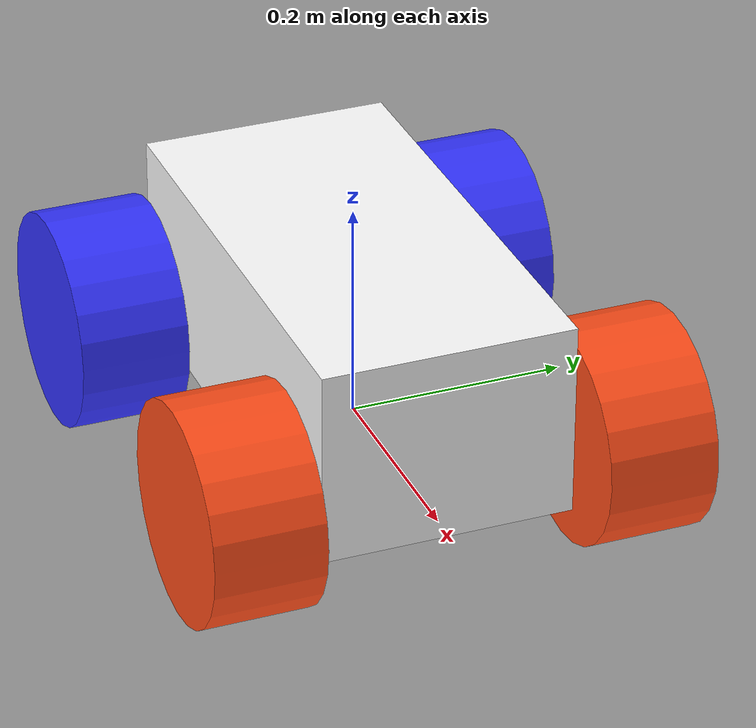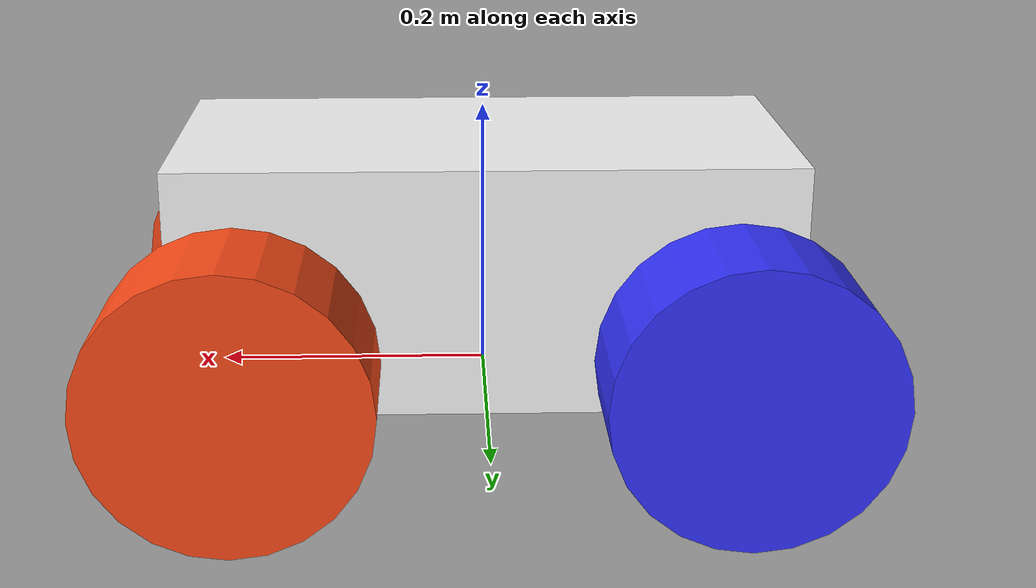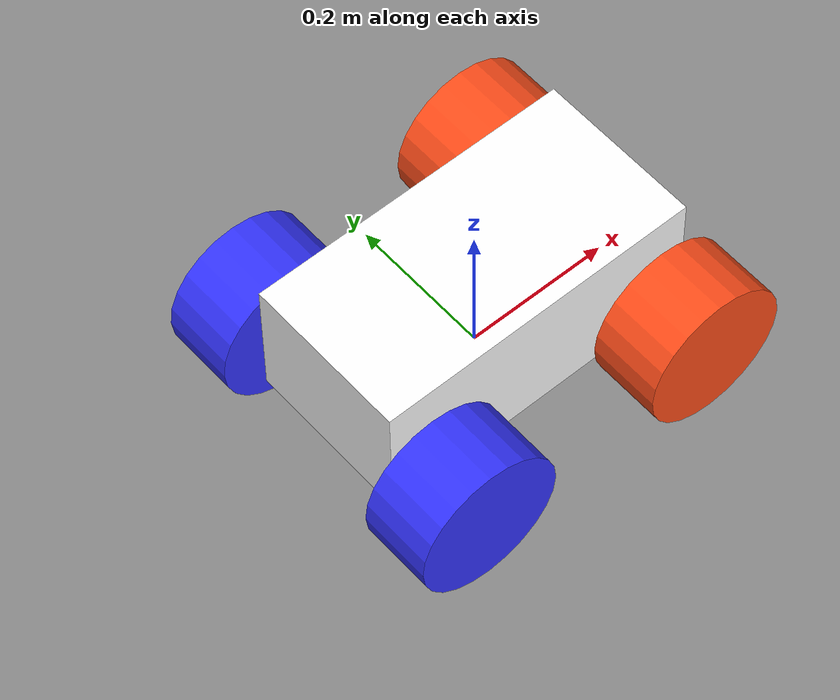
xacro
<?xml version="1.0"?>
<robot xmlns:xacro="http://www.ros.org/wiki/xacro">
    <xacro:include filename="inertial_macros.xacro" />

    <material name="white">
        <color rgba="1 1 1 1" />
    </material>

    <material name="red">
        <color rgba="1 0 0 1" />
    </material>

    <material name="orange">
        <color rgba="1 0.3 0.1 1" />
    </material>

    <material name="blue">
        <color rgba="0.2 0.2 1 1" />
    </material>

    <material name="black">
        <color rgba="0 0 0 1" />
    </material>

    <!-- BASE LINK -->

    <link name="base_link">

    </link>

    <!-- CHASSIS LINK -->

    <joint name="chassis_joint" type="fixed">
        <parent link="base_link" />
        <child link="chassis" />
        <origin xyz="-0.225 0 0" />
    </joint>

    <link name="chassis">
        <visual>
            <origin xyz="0.225 0 0.09" />
            <geometry>
                <box size="0.450 0.23 0.18" />
            </geometry>
            <material name="white" />
        </visual>
        <collision>
            <origin xyz="0.225 0 0.09" />
            <geometry>
                <box size="0.450 0.23 0.18" />
            </geometry>
        </collision>
        <xacro:inertial_box mass="5.0" x="0.450" y="0.23" z="0.18">
            <origin xyz="0.225 0 0.09" rpy="0 0 0" />
        </xacro:inertial_box>
    </link>

    <gazebo reference="chassis">
        <material>Gazebo/White</material>
    </gazebo>

    <!-- LEFT FRONT WHEEL LINK -->

    <joint name="left_front_wheel_joint" type="continuous">
        <parent link="base_link" />
        <child link="left_front_wheel" />
        <origin xyz="0.175 0.178 .045" rpy="-${pi/2} 0 0" />
        <axis xyz="0 0 1" />
        <limit effort="1" velocity="1" />
        <joint_properties damping="1.0" friction="1.0" />
    </joint>

    <link name="left_front_wheel">
        <visual>
            <geometry>
                <cylinder radius="0.1" length="0.1" />
            </geometry>
            <material name="orange" />
        </visual>
        <collision>
            <geometry>
                <sphere radius="0.1" />
            </geometry>
        </collision>
        <xacro:inertial_cylinder mass="1.5" length="0.1" radius="0.1">
            <origin xyz="0 0 0" rpy="0 0 0" />
        </xacro:inertial_cylinder>
    </link>

    <gazebo reference="left_front_wheel">
        <material>Gazebo/Orange</material>
        <mu1 value="0.9" />
        <mu2 value="0.9" />
    </gazebo>

    <!-- LEFT BACK WHEEL LINK -->

    <joint name="left_back_wheel_joint" type="continuous">
        <parent link="base_link" />
        <child link="left_back_wheel" />
        <origin xyz="-0.175 0.178 .045" rpy="-${pi/2} 0 0" />
        <axis xyz="0 0 1" />
        <limit effort="1" velocity="1" />
        <joint_properties damping="1.0" friction="1.0" />
    </joint>

    <link name="left_back_wheel">
        <visual>
            <geometry>
                <cylinder radius="0.1" length="0.1" />
            </geometry>
            <material name="blue" />
        </visual>
        <collision>
            <geometry>
                <sphere radius="0.1" />
            </geometry>
        </collision>
        <xacro:inertial_cylinder mass="1.5" length="0.1" radius="0.1">
            <origin xyz="0 0 0" rpy="0 0 0" />
        </xacro:inertial_cylinder>
    </link>

    <gazebo reference="left_back_wheel">
        <material>Gazebo/Blue</material>
        <mu1 value="0.9" />
        <mu2 value="0.9" />
    </gazebo>

    <!-- RIGHT FRONT WHEEL LINK -->

    <joint name="right_front_wheel_joint" type="continuous">
        <parent link="base_link" />
        <child link="right_front_wheel" />
        <origin xyz="0.175 -0.178 .045" rpy="${pi/2} 0 0" />
        <axis xyz="0 0 -1" />
        <limit effort="1" velocity="1" />
        <joint_properties damping="1.0" friction="1.0" />
    </joint>

    <link name="right_front_wheel">
        <visual>
            <geometry>
                <cylinder radius="0.1" length="0.1" />
            </geometry>
            <material name="orange" />
        </visual>
        <collision>
            <geometry>
                <sphere radius="0.1" />
            </geometry>
        </collision>
        <xacro:inertial_cylinder mass="1.5" length="0.1" radius="0.1">
            <origin xyz="0 0 0" rpy="0 0 0" />
        </xacro:inertial_cylinder>
    </link>

    <gazebo reference="right_front_wheel">
        <material>Gazebo/Orange</material>
        <mu1 value="0.9" />
        <mu2 value="0.9" />
    </gazebo>

    <!-- RIGHT BACK WHEEL LINK -->

    <joint name="right_back_wheel_joint" type="continuous">
        <parent link="base_link" />
        <child link="right_back_wheel" />
        <origin xyz="-0.175 -0.178 .045" rpy="${pi/2} 0 0" />
        <axis xyz="0 0 -1" />
        <limit effort="1" velocity="1" />
        <joint_properties damping="1.0" friction="1.0" />
    </joint>

    <link name="right_back_wheel">
        <visual>
            <geometry>
                <cylinder radius="0.1" length="0.1" />
            </geometry>
            <material name="blue" />
        </visual>
        <collision>
            <geometry>
                <sphere radius="0.1" />
            </geometry>
        </collision>
        <xacro:inertial_cylinder mass="1.5" length="0.1" radius="0.1">
            <origin xyz="0 0 0" rpy="0 0 0" />
        </xacro:inertial_cylinder>
    </link>

    <gazebo reference="right_back_wheel">
        <material>Gazebo/Blue</material>
        <mu1 value="0.9" />
        <mu2 value="0.9" />
    </gazebo>

</robot>
